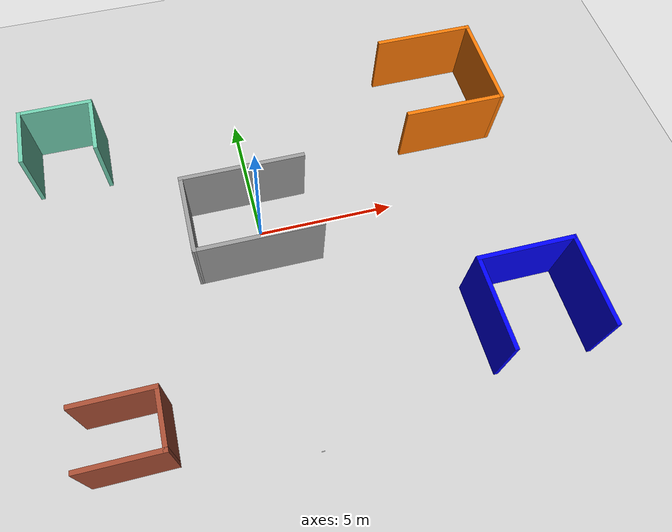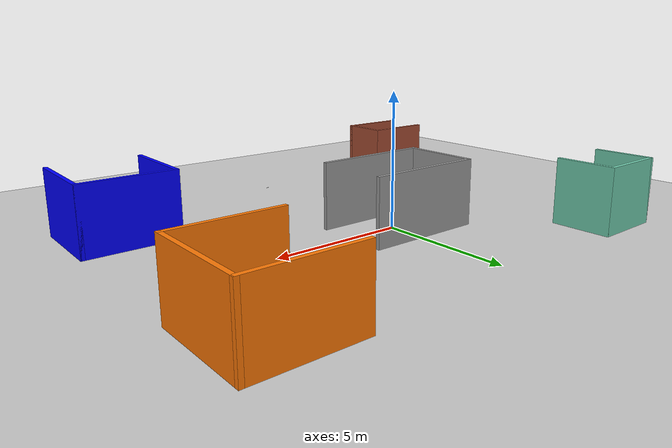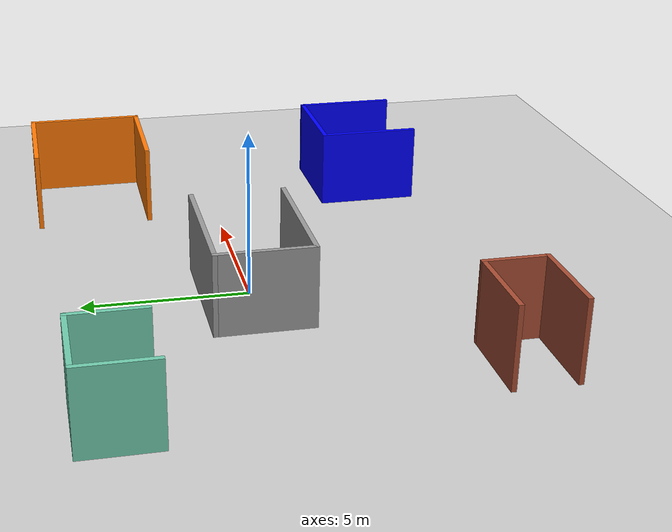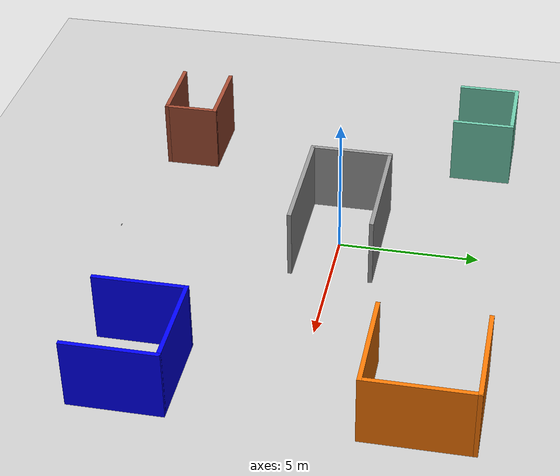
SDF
<sdf version="1.7">
 <world name="default">
  <light name="sun" type="directional">
   <pose>0 0 10 0 -0 0</pose>
   <diffuse>0.8 0.8 0.8 1</diffuse>
   <specular>0.2 0.2 0.2 1</specular>
   <attenuation>
    <range>1000</range>
    <constant>0.9</constant>
    <linear>0.01</linear>
    <quadratic>0.001</quadratic>
   </attenuation>
   <direction>-0.5 0.1 -0.9</direction>
   <spot><inner_angle>0</inner_angle><outer_angle>0</outer_angle><falloff>0</falloff></spot>
  </light>
  <model name="ground_plane">
   <static>1</static>
   <link name="link">
    <collision name="collision">
     <geometry><plane><normal>0 0 1</normal><size>100 100</size></plane></geometry>
     <surface>
      <contact><collide_bitmask>65535</collide_bitmask></contact>
      <friction><ode><mu>100</mu><mu2>50</mu2></ode></friction>
     </surface>
    </collision>
    <visual name="visual">
     <cast_shadows>0</cast_shadows>
     <geometry><plane><normal>0 0 1</normal><size>100 100</size></plane></geometry>
     <material>
      <script><uri>file://media/materials/scripts/gazebo.material</uri><name>Gazebo/Grey</name></script>
     </material>
    </visual>
   </link>
  </model>
  <gravity>0 0 -9.8</gravity>
  <magnetic_field>6e-06 2.3e-05 -4.2e-05</magnetic_field>
  <atmosphere type="adiabatic"/>
  <physics type="ode">
   <max_step_size>0.001</max_step_size>
   <real_time_factor>1</real_time_factor>
   <real_time_update_rate>1000</real_time_update_rate>
  </physics>
  <scene><ambient>0.4 0.4 0.4 1</ambient><background>0.7 0.7 0.7 1</background><shadows>1</shadows></scene>
  <audio><device>default</device></audio>
  <spherical_coordinates>
   <surface_model>EARTH_WGS84</surface_model>
   <latitude_deg>0</latitude_deg>
   <longitude_deg>0</longitude_deg>
   <elevation>0</elevation>
   <heading_deg>0</heading_deg>
  </spherical_coordinates>
  <model name="project_world">
   <pose>1.02714 -0.780483 0 0 -0 0</pose>
   <link name="Wall_13">
    <collision name="Wall_13_Collision">
     <geometry><box><size>4.5 0.15 2.5</size></box></geometry>
     <pose>0 0 1.25 0 -0 0</pose>
    </collision>
    <visual name="Wall_13_Visual">
     <pose>0 0 1.25 0 -0 0</pose>
     <geometry><box><size>4.5 0.15 2.5</size></box></geometry>
     <material>
      <script><uri>file://media/materials/scripts/gazebo.material</uri><name>Gazebo/Grey</name></script>
      <ambient>1 1 1 1</ambient>
     </material>
     <meta><layer>0</layer></meta>
    </visual>
    <pose>-1.29572 2.19932 0 0 -0 3.14159</pose>
   </link>
   <link name="Wall_14">
    <collision name="Wall_14_Collision">
     <geometry><box><size>3 0.15 2.5</size></box></geometry>
     <pose>0 0 1.25 0 -0 0</pose>
    </collision>
    <visual name="Wall_14_Visual">
     <pose>0 0 1.25 0 -0 0</pose>
     <geometry><box><size>3 0.15 2.5</size></box></geometry>
     <material>
      <script><uri>file://media/materials/scripts/gazebo.material</uri><name>Gazebo/Grey</name></script>
      <ambient>1 1 1 1</ambient>
     </material>
     <meta><layer>0</layer></meta>
    </visual>
    <pose>-3.47072 0.774318 0 0 -0 -1.5708</pose>
   </link>
   <link name="Wall_15">
    <collision name="Wall_15_Collision">
     <geometry><box><size>4.5 0.15 2.5</size></box></geometry>
     <pose>0 0 1.25 0 -0 0</pose>
    </collision>
    <visual name="Wall_15_Visual">
     <pose>0 0 1.25 0 -0 0</pose>
     <geometry><box><size>4.5 0.15 2.5</size></box></geometry>
     <material>
      <script><uri>file://media/materials/scripts/gazebo.material</uri><name>Gazebo/Grey</name></script>
      <ambient>1 1 1 1</ambient>
     </material>
     <meta><layer>0</layer></meta>
    </visual>
    <pose>-1.29572 -0.650682 0 0 -0 0</pose>
   </link>
   <link name="Wall_17">
    <collision name="Wall_17_Collision">
     <geometry><box><size>2.25 0.15 2.5</size></box></geometry>
     <pose>0 0 1.25 0 -0 0</pose>
    </collision>
    <visual name="Wall_17_Visual">
     <pose>0 0 1.25 0 -0 0</pose>
     <geometry><box><size>2.25 0.15 2.5</size></box></geometry>
     <material>
      <script><uri>file://media/materials/scripts/gazebo.material</uri><name>Gazebo/Grey</name></script>
      <ambient>0.435294 0.796078 0.67451 1</ambient>
     </material>
     <meta><layer>0</layer></meta>
    </visual>
    <pose>-8.78723 5.32945 0 0 -0 1.5708</pose>
   </link>
   <link name="Wall_18">
    <collision name="Wall_18_Collision">
     <geometry><box><size>2.75 0.15 2.5</size></box></geometry>
     <pose>0 0 1.25 0 -0 0</pose>
    </collision>
    <visual name="Wall_18_Visual">
     <pose>0 0 1.25 0 -0 0</pose>
     <geometry><box><size>2.75 0.15 2.5</size></box></geometry>
     <material>
      <script><uri>file://media/materials/scripts/gazebo.material</uri><name>Gazebo/Grey</name></script>
      <ambient>0.435294 0.796078 0.67451 1</ambient>
     </material>
     <meta><layer>0</layer></meta>
    </visual>
    <pose>-7.48723 6.37945 0 0 -0 0</pose>
   </link>
   <link name="Wall_19">
    <collision name="Wall_19_Collision">
     <geometry><box><size>2.25 0.15 2.5</size></box></geometry>
     <pose>0 0 1.25 0 -0 0</pose>
    </collision>
    <visual name="Wall_19_Visual">
     <pose>0 0 1.25 0 -0 0</pose>
     <geometry><box><size>2.25 0.15 2.5</size></box></geometry>
     <material>
      <script><uri>file://media/materials/scripts/gazebo.material</uri><name>Gazebo/Grey</name></script>
      <ambient>0.435294 0.796078 0.67451 1</ambient>
     </material>
     <meta><layer>0</layer></meta>
    </visual>
    <pose>-6.18723 5.32945 0 0 -0 -1.5708</pose>
   </link>
   <link name="Wall_21">
    <collision name="Wall_21_Collision">
     <geometry><box><size>2.75 0.15 2.5</size></box></geometry>
     <pose>0 0 1.25 0 -0 0</pose>
    </collision>
    <visual name="Wall_21_Visual">
     <pose>0 0 1.25 0 -0 0</pose>
     <geometry><box><size>2.75 0.15 2.5</size></box></geometry>
     <material>
      <script><uri>file://media/materials/scripts/gazebo.material</uri><name>Gazebo/Bricks</name></script>
      <ambient>1 1 1 1</ambient>
     </material>
     <meta><layer>0</layer></meta>
    </visual>
    <pose>-6.56952 -4.80584 0 0 -0 0</pose>
   </link>
   <link name="Wall_22">
    <collision name="Wall_22_Collision">
     <geometry><box><size>2 0.15 2.5</size></box></geometry>
     <pose>0 0 1.25 0 -0 0</pose>
    </collision>
    <visual name="Wall_22_Visual">
     <pose>0 0 1.25 0 -0 0</pose>
     <geometry><box><size>2 0.15 2.5</size></box></geometry>
     <material>
      <script><uri>file://media/materials/scripts/gazebo.material</uri><name>Gazebo/Bricks</name></script>
      <ambient>1 1 1 1</ambient>
     </material>
     <meta><layer>0</layer></meta>
    </visual>
    <pose>-5.26952 -5.73084 0 0 -0 -1.5708</pose>
   </link>
   <link name="Wall_23">
    <collision name="Wall_23_Collision">
     <geometry><box><size>2.75 0.15 2.5</size></box></geometry>
     <pose>0 0 1.25 0 -0 0</pose>
    </collision>
    <visual name="Wall_23_Visual">
     <pose>0 0 1.25 0 -0 0</pose>
     <geometry><box><size>2.75 0.15 2.5</size></box></geometry>
     <material>
      <script><uri>file://media/materials/scripts/gazebo.material</uri><name>Gazebo/Bricks</name></script>
      <ambient>1 1 1 1</ambient>
     </material>
     <meta><layer>0</layer></meta>
    </visual>
    <pose>-6.56952 -6.65584 0 0 -0 3.14159</pose>
   </link>
   <link name="Wall_25">
    <collision name="Wall_25_Collision">
     <geometry><box><size>3.25 0.15 2.5</size></box></geometry>
     <pose>0 0 1.25 0 -0 0</pose>
    </collision>
    <visual name="Wall_25_Visual">
     <pose>0 0 1.25 0 -0 0</pose>
     <geometry><box><size>3.25 0.15 2.5</size></box></geometry>
     <material>
      <script><uri>file://media/materials/scripts/gazebo.material</uri><name>Gazebo/Grey</name></script>
      <ambient>0 0 1 1</ambient>
     </material>
     <meta><layer>0</layer></meta>
    </visual>
    <pose>5.43723 -4.63241 0 0 -0 1.5708</pose>
   </link>
   <link name="Wall_26">
    <collision name="Wall_26_Collision">
     <geometry><box><size>3.5 0.15 2.5</size></box></geometry>
     <pose>0 0 1.25 0 -0 0</pose>
    </collision>
    <visual name="Wall_26_Visual">
     <pose>0 0 1.25 0 -0 0</pose>
     <geometry><box><size>3.5 0.15 2.5</size></box></geometry>
     <material>
      <script><uri>file://media/materials/scripts/gazebo.material</uri><name>Gazebo/Grey</name></script>
      <ambient>0 0 1 1</ambient>
     </material>
     <meta><layer>0</layer></meta>
    </visual>
    <pose>7.11223 -3.08241 0 0 -0 0</pose>
   </link>
   <link name="Wall_27">
    <collision name="Wall_27_Collision">
     <geometry><box><size>3.25 0.15 2.5</size></box></geometry>
     <pose>0 0 1.25 0 -0 0</pose>
    </collision>
    <visual name="Wall_27_Visual">
     <pose>0 0 1.25 0 -0 0</pose>
     <geometry><box><size>3.25 0.15 2.5</size></box></geometry>
     <material>
      <script><uri>file://media/materials/scripts/gazebo.material</uri><name>Gazebo/Grey</name></script>
      <ambient>0 0 1 1</ambient>
     </material>
     <meta><layer>0</layer></meta>
    </visual>
    <pose>8.78723 -4.63241 0 0 -0 -1.5708</pose>
   </link>
   <link name="Wall_7">
    <collision name="Wall_7_Collision">
     <geometry><box><size>3.75 0.15 2.5</size></box></geometry>
     <pose>0 0 1.25 0 -0 0</pose>
    </collision>
    <visual name="Wall_7_Visual">
     <pose>0 0 1.25 0 -0 0</pose>
     <geometry><box><size>3.75 0.15 2.5</size></box></geometry>
     <material>
      <script><uri>file://media/materials/scripts/gazebo.material</uri><name>Gazebo/Grey</name></script>
      <ambient>0.996078 0.47451 0.0196078 1</ambient>
     </material>
     <meta><layer>0</layer></meta>
    </visual>
    <pose>6.93133 3.05584 0 0 -0 0</pose>
   </link>
   <link name="Wall_8">
    <collision name="Wall_8_Collision">
     <geometry><box><size>3.75 0.15 2.5</size></box></geometry>
     <pose>0 0 1.25 0 -0 0</pose>
    </collision>
    <visual name="Wall_8_Visual">
     <pose>0 0 1.25 0 -0 0</pose>
     <geometry><box><size>3.75 0.15 2.5</size></box></geometry>
     <material>
      <script><uri>file://media/materials/scripts/gazebo.material</uri><name>Gazebo/Grey</name></script>
      <ambient>0.996078 0.47451 0.0196078 1</ambient>
     </material>
     <meta><layer>0</layer></meta>
    </visual>
    <pose>8.73133 4.85584 0 0 -0 1.5708</pose>
   </link>
   <link name="Wall_9">
    <collision name="Wall_9_Collision">
     <geometry><box><size>3.75 0.15 2.5</size></box></geometry>
     <pose>0 0 1.25 0 -0 0</pose>
    </collision>
    <visual name="Wall_9_Visual">
     <pose>0 0 1.25 0 -0 0</pose>
     <geometry><box><size>3.75 0.15 2.5</size></box></geometry>
     <material>
      <script><uri>file://media/materials/scripts/gazebo.material</uri><name>Gazebo/Grey</name></script>
      <ambient>0.996078 0.47451 0.0196078 1</ambient>
     </material>
     <meta><layer>0</layer></meta>
    </visual>
    <pose>6.93133 6.65584 0 0 -0 3.14159</pose>
   </link>
   <static>1</static>
  </model>
  <model name="stone_10_2_5_1cm">
   <link name="link">
    <pose>0 0 0.005 0 -0 0</pose>
    <inertial>
     <mass>0.0628</mass>
     <inertia>
      <ixx>3.79417e-06</ixx>
      <ixy>0</ixy>
      <ixz>0</ixz>
      <iyy>5.28567e-05</iyy>
      <iyz>0</iyz>
      <izz>5.56042e-05</izz>
     </inertia>
    </inertial>
    <collision name="collision">
     <geometry><box><size>0.1 0.025 0.01</size></box></geometry>
     <surface>
      <contact>
       <poissons_ratio>0.15</poissons_ratio>
       <elastic_modulus>8e+10</elastic_modulus>
       <ode><kp>100000</kp><kd>100</kd><max_vel>100</max_vel><min_depth>0.001</min_depth></ode>
      </contact>
      <friction>
       <torsional>
        <coefficient>1</coefficient>
        <use_patch_radius>0</use_patch_radius>
        <surface_radius>0.01</surface_radius>
       </torsional>
      </friction>
     </surface>
    </collision>
    <visual name="visual">
     <geometry><box><size>0.1 0.025 0.01</size></box></geometry>
     <material>
      <script><uri>file://media/materials/scripts/gazebo.material</uri><name>Gazebo/Grey</name></script>
     </material>
    </visual>
   </link>
   <pose>0.249818 -8.08991 -0.001002 0 -0 0</pose>
  </model>
 </world>
</sdf>
